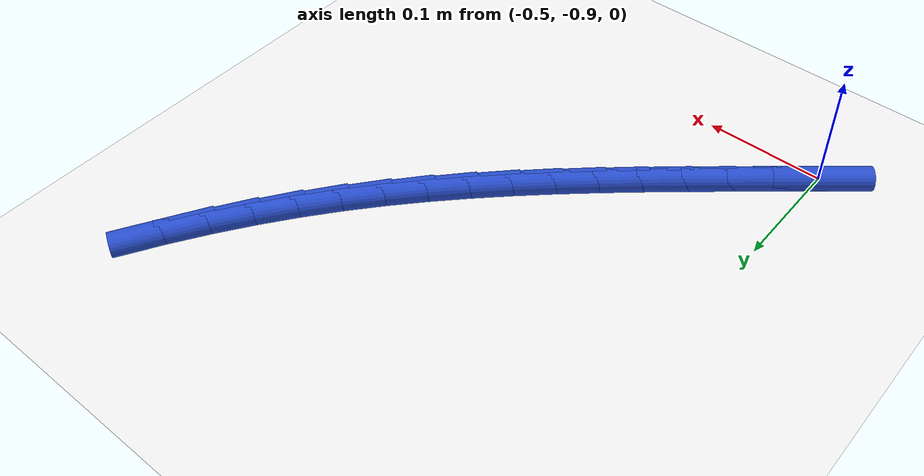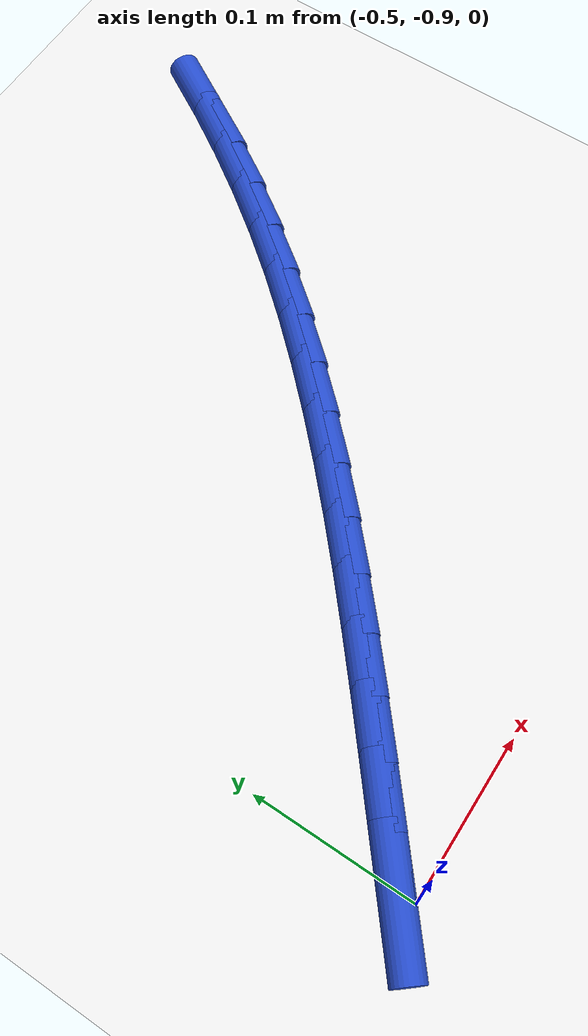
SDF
<sdf version="1.6">
 <world name="default">
  <model name="ground_plane">
   <static>1</static>
   <link name="link">
    <collision name="collision">
     <geometry><plane><normal>0 0 1</normal><size>100 100</size></plane></geometry>
     <surface><friction><ode><mu>100</mu><mu2>50</mu2></ode></friction></surface>
    </collision>
    <visual name="visual">
     <cast_shadows>0</cast_shadows>
     <geometry><plane><normal>0 0 1</normal><size>100 100</size></plane></geometry>
     <material>
      <script><uri>file://media/materials/scripts/gazebo.material</uri><name>Gazebo/WhiteGlow</name></script>
     </material>
    </visual>
   </link>
  </model>
  <model name="line">
   <link name="link_159">
    <pose>-0.5052009318701343 -0.8913258617766399 0.01 0 1.57 0.691487394488866</pose>
    <collision name="collision">
     <geometry><cylinder><radius>0.01</radius><length>0.08</length></cylinder></geometry>
    </collision>
    <visual name="visual">
     <material>
      <script><name>Gazebo/Blue</name><uri>file://media/materials/scripts/gazebo.material</uri></script>
     </material>
     <geometry><cylinder><radius>0.01</radius><length>0.08</length></cylinder></geometry>
    </visual>
   </link>
   <link name="link_160">
    <pose>-0.4772555722992394 -0.8681915820722165 0.01 0 1.57 0.6919999001326548</pose>
    <collision name="collision">
     <geometry><cylinder><radius>0.01</radius><length>0.08</length></cylinder></geometry>
    </collision>
    <visual name="visual">
     <material>
      <script><name>Gazebo/Blue</name><uri>file://media/materials/scripts/gazebo.material</uri></script>
     </material>
     <geometry><cylinder><radius>0.01</radius><length>0.08</length></cylinder></geometry>
    </visual>
   </link>
   <link name="link_161">
    <pose>-0.44973681356177514 -0.8453866804835516 0.01 0 1.57 0.6958864489274088</pose>
    <collision name="collision">
     <geometry><cylinder><radius>0.01</radius><length>0.08</length></cylinder></geometry>
    </collision>
    <visual name="visual">
     <material>
      <script><name>Gazebo/Blue</name><uri>file://media/materials/scripts/gazebo.material</uri></script>
     </material>
     <geometry><cylinder><radius>0.01</radius><length>0.08</length></cylinder></geometry>
    </visual>
   </link>
   <link name="link_162">
    <pose>-0.4226834086407775 -0.8227894931491931 0.01 0 1.57 0.7032734245121337</pose>
    <collision name="collision">
     <geometry><cylinder><radius>0.01</radius><length>0.08</length></cylinder></geometry>
    </collision>
    <visual name="visual">
     <material>
      <script><name>Gazebo/Blue</name><uri>file://media/materials/scripts/gazebo.material</uri></script>
     </material>
     <geometry><cylinder><radius>0.01</radius><length>0.08</length></cylinder></geometry>
    </visual>
   </link>
   <link name="link_163">
    <pose>-0.3961341106688781 -0.8002783533215807 0.01 0 1.57 0.7142629654283283</pose>
    <collision name="collision">
     <geometry><cylinder><radius>0.01</radius><length>0.08</length></cylinder></geometry>
    </collision>
    <visual name="visual">
     <material>
      <script><name>Gazebo/Blue</name><uri>file://media/materials/scripts/gazebo.material</uri></script>
     </material>
     <geometry><cylinder><radius>0.01</radius><length>0.08</length></cylinder></geometry>
    </visual>
   </link>
   <link name="link_164">
    <pose>-0.37012767277870834 -0.7777315942531543 0.01 0 1.57 0.7289271336186607</pose>
    <collision name="collision">
     <geometry><cylinder><radius>0.01</radius><length>0.08</length></cylinder></geometry>
    </collision>
    <visual name="visual">
     <material>
      <script><name>Gazebo/Blue</name><uri>file://media/materials/scripts/gazebo.material</uri></script>
     </material>
     <geometry><cylinder><radius>0.01</radius><length>0.08</length></cylinder></geometry>
    </visual>
   </link>
   <link name="link_165">
    <pose>-0.3447028481028999 -0.7550275491963537 0.01 0 1.57 0.747300734335722</pose>
    <collision name="collision">
     <geometry><cylinder><radius>0.01</radius><length>0.08</length></cylinder></geometry>
    </collision>
    <visual name="visual">
     <material>
      <script><name>Gazebo/Blue</name><uri>file://media/materials/scripts/gazebo.material</uri></script>
     </material>
     <geometry><cylinder><radius>0.01</radius><length>0.08</length></cylinder></geometry>
    </visual>
   </link>
   <link name="link_166">
    <pose>-0.3198983897740844 -0.7320445514036188 0.01 0 1.57 0.7693730614473746</pose>
    <collision name="collision">
     <geometry><cylinder><radius>0.01</radius><length>0.08</length></cylinder></geometry>
    </collision>
    <visual name="visual">
     <material>
      <script><name>Gazebo/Blue</name><uri>file://media/materials/scripts/gazebo.material</uri></script>
     </material>
     <geometry><cylinder><radius>0.01</radius><length>0.08</length></cylinder></geometry>
    </visual>
   </link>
   <link name="link_167">
    <pose>-0.2957530509248929 -0.7086609341273891 0.01 0 1.57 0.7950790573063727</pose>
    <collision name="collision">
     <geometry><cylinder><radius>0.01</radius><length>0.08</length></cylinder></geometry>
    </collision>
    <visual name="visual">
     <material>
      <script><name>Gazebo/Blue</name><uri>file://media/materials/scripts/gazebo.material</uri></script>
     </material>
     <geometry><cylinder><radius>0.01</radius><length>0.08</length></cylinder></geometry>
    </visual>
   </link>
   <link name="link_168">
    <pose>-0.27230558468795696 -0.6847550306201042 0.01 0 1.57 0.8242907055670186</pose>
    <collision name="collision">
     <geometry><cylinder><radius>0.01</radius><length>0.08</length></cylinder></geometry>
    </collision>
    <visual name="visual">
     <material>
      <script><name>Gazebo/Blue</name><uri>file://media/materials/scripts/gazebo.material</uri></script>
     </material>
     <geometry><cylinder><radius>0.01</radius><length>0.08</length></cylinder></geometry>
    </visual>
   </link>
   <link name="link_169">
    <pose>-0.2495947441959085 -0.6602051741342044 0.01 0 1.57 0.8568098051311471</pose>
    <collision name="collision">
     <geometry><cylinder><radius>0.01</radius><length>0.08</length></cylinder></geometry>
    </collision>
    <visual name="visual">
     <material>
      <script><name>Gazebo/Blue</name><uri>file://media/materials/scripts/gazebo.material</uri></script>
     </material>
     <geometry><cylinder><radius>0.01</radius><length>0.08</length></cylinder></geometry>
    </visual>
   </link>
   <link name="link_170">
    <pose>-0.2276592825813787 -0.6348896979221295 0.01 0 1.57 0.8923580025587422</pose>
    <collision name="collision">
     <geometry><cylinder><radius>0.01</radius><length>0.08</length></cylinder></geometry>
    </collision>
    <visual name="visual">
     <material>
      <script><name>Gazebo/Blue</name><uri>file://media/materials/scripts/gazebo.material</uri></script>
     </material>
     <geometry><cylinder><radius>0.01</radius><length>0.08</length></cylinder></geometry>
    </visual>
   </link>
   <link name="link_171">
    <pose>-0.2065379443500992 -0.6086872204081053 0.01 0 1.57 0.9295830644335292</pose>
    <collision name="collision">
     <geometry><cylinder><radius>0.01</radius><length>0.08</length></cylinder></geometry>
    </collision>
    <visual name="visual">
     <material>
      <script><name>Gazebo/Blue</name><uri>file://media/materials/scripts/gazebo.material</uri></script>
     </material>
     <geometry><cylinder><radius>0.01</radius><length>0.08</length></cylinder></geometry>
    </visual>
   </link>
   <link name="link_172">
    <pose>-0.1862678159525695 -0.5815311688775595 0.01 0 1.57 0.9661758439339048</pose>
    <collision name="collision">
     <geometry><cylinder><radius>0.01</radius><length>0.08</length></cylinder></geometry>
    </collision>
    <visual name="visual">
     <material>
      <script><name>Gazebo/Blue</name><uri>file://media/materials/scripts/gazebo.material</uri></script>
     </material>
     <geometry><cylinder><radius>0.01</radius><length>0.08</length></cylinder></geometry>
    </visual>
   </link>
   <link name="link_173">
    <pose>-0.16688236507560092 -0.5534745928774655 0.01 0 1.57 1.0019918812994166</pose>
    <collision name="collision">
     <geometry><cylinder><radius>0.01</radius><length>0.08</length></cylinder></geometry>
    </collision>
    <visual name="visual">
     <material>
      <script><name>Gazebo/Blue</name><uri>file://media/materials/scripts/gazebo.material</uri></script>
     </material>
     <geometry><cylinder><radius>0.01</radius><length>0.08</length></cylinder></geometry>
    </visual>
   </link>
   <link name="link_174">
    <pose>-0.14841458201287291 -0.5245863227161814 0.01 0 1.57 1.03718812199744</pose>
    <collision name="collision">
     <geometry><cylinder><radius>0.01</radius><length>0.08</length></cylinder></geometry>
    </collision>
    <visual name="visual">
     <material>
      <script><name>Gazebo/Blue</name><uri>file://media/materials/scripts/gazebo.material</uri></script>
     </material>
     <geometry><cylinder><radius>0.01</radius><length>0.08</length></cylinder></geometry>
    </visual>
   </link>
  </model>
 </world>
</sdf>
